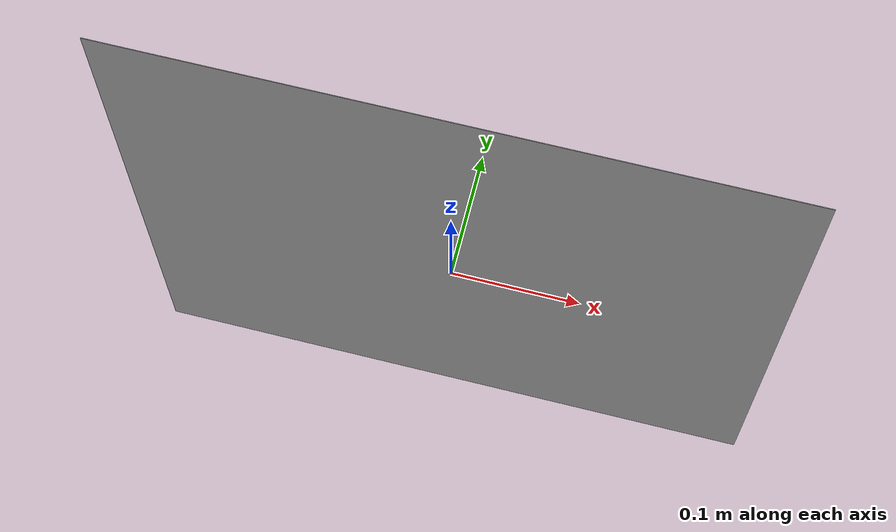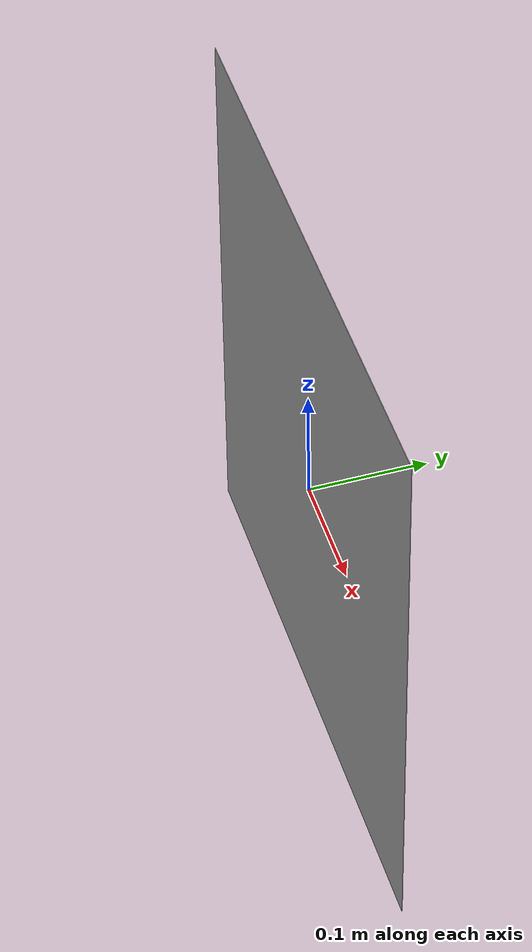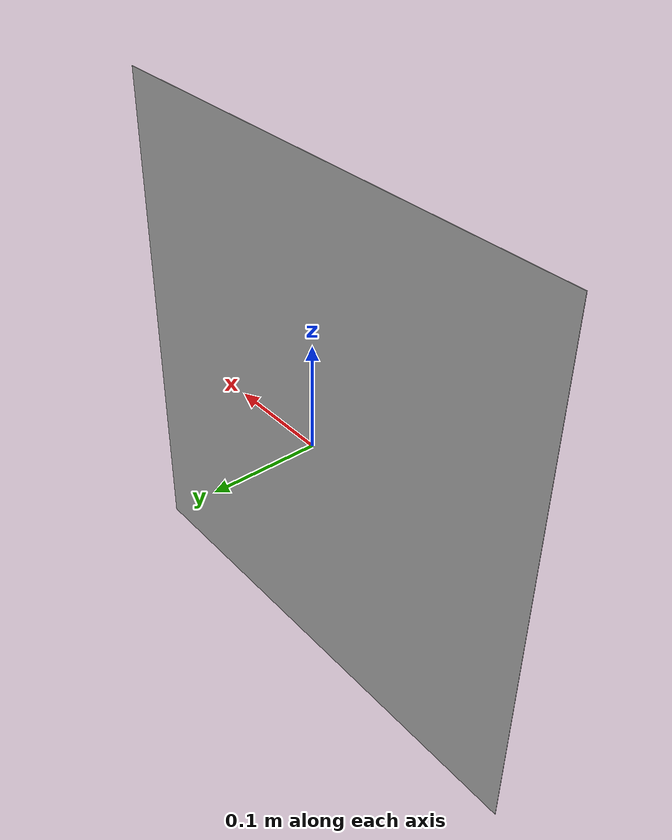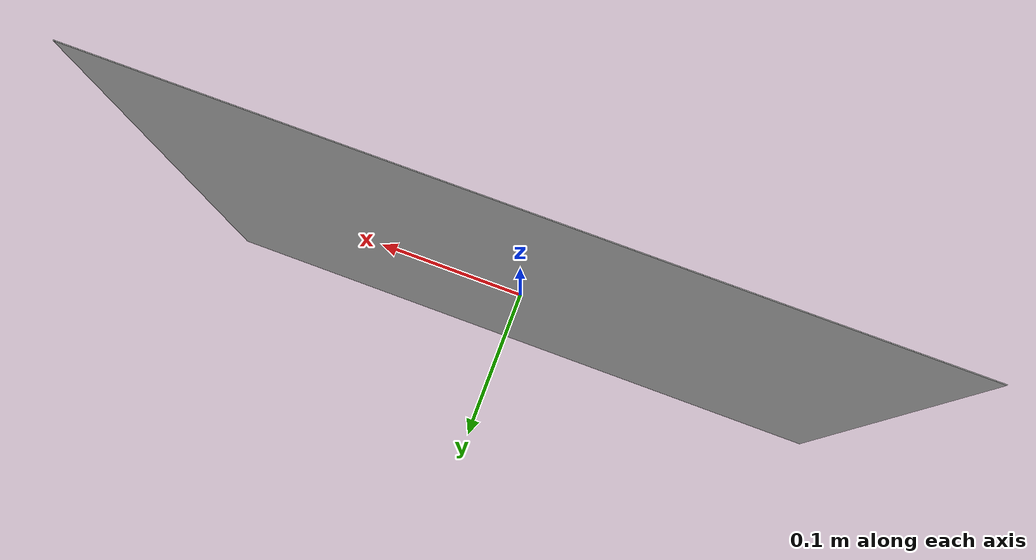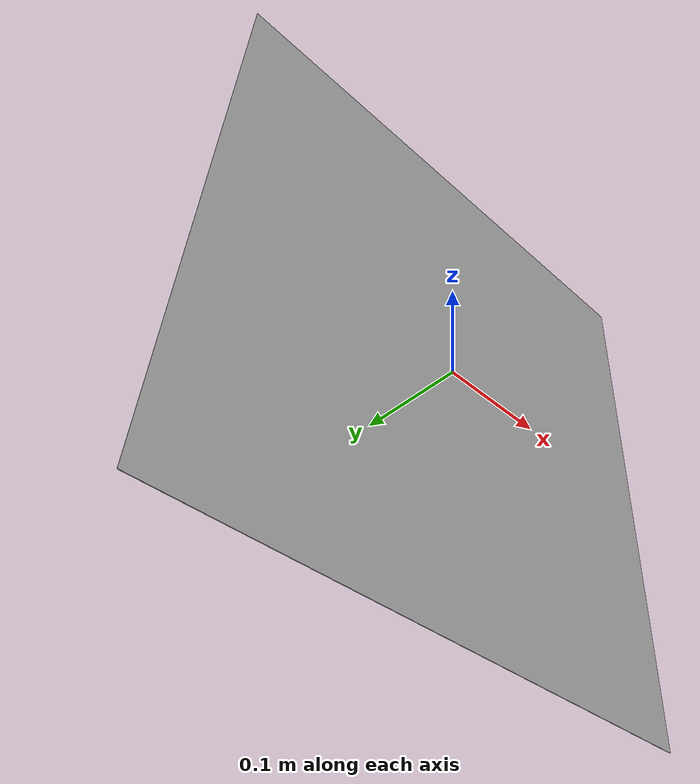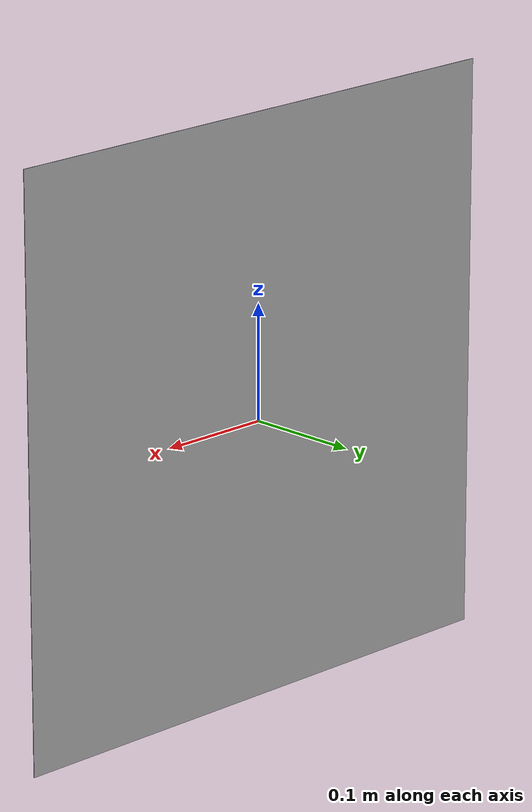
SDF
<?xml version='1.0'?>
<sdf version='1.4'>
  <model name='aruco_1'>
    <static>true</static>
    <link name='link'>
      <visual name='visual_0'>
        <pose>0 0 0.01 1.5708 0 0</pose>

        <cast_shadows>false</cast_shadows>
        <geometry>
          <plane>
            <normal>0 0 1</normal>
            <size>0.5 0.5</size>
        </plane>
      </geometry>
        <material>
          <script>
            <uri>model://aruco_1/materials/scripts</uri>
            <uri>model://aruco_1/materials/textures</uri>
            <name>vrc/aruco_1</name>
        </script>
      </material>
    </visual>
  </link>
</model>
</sdf>
